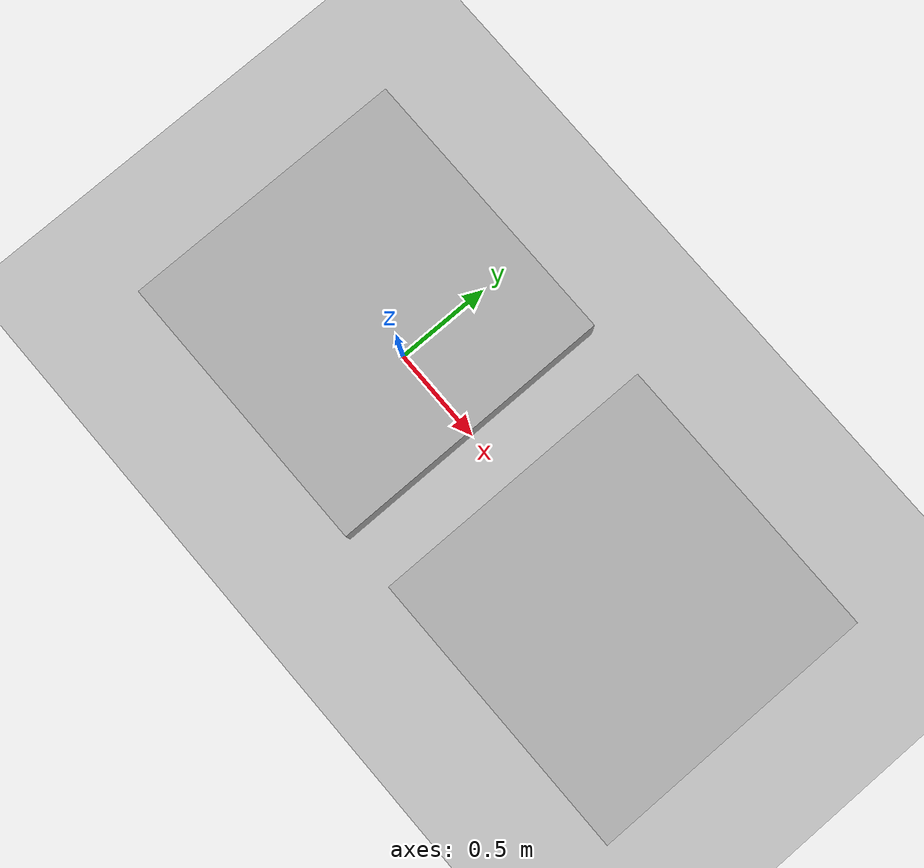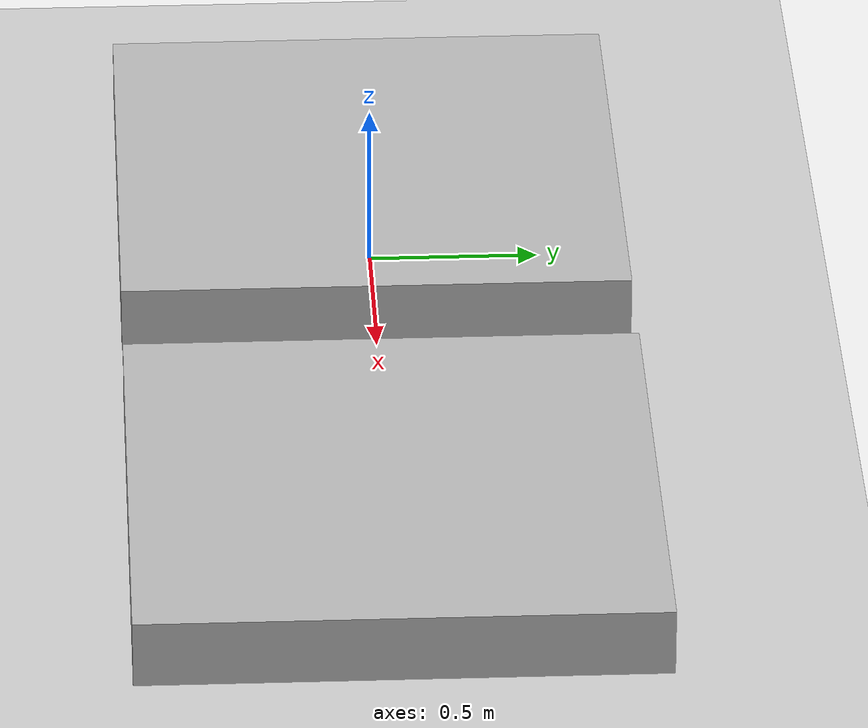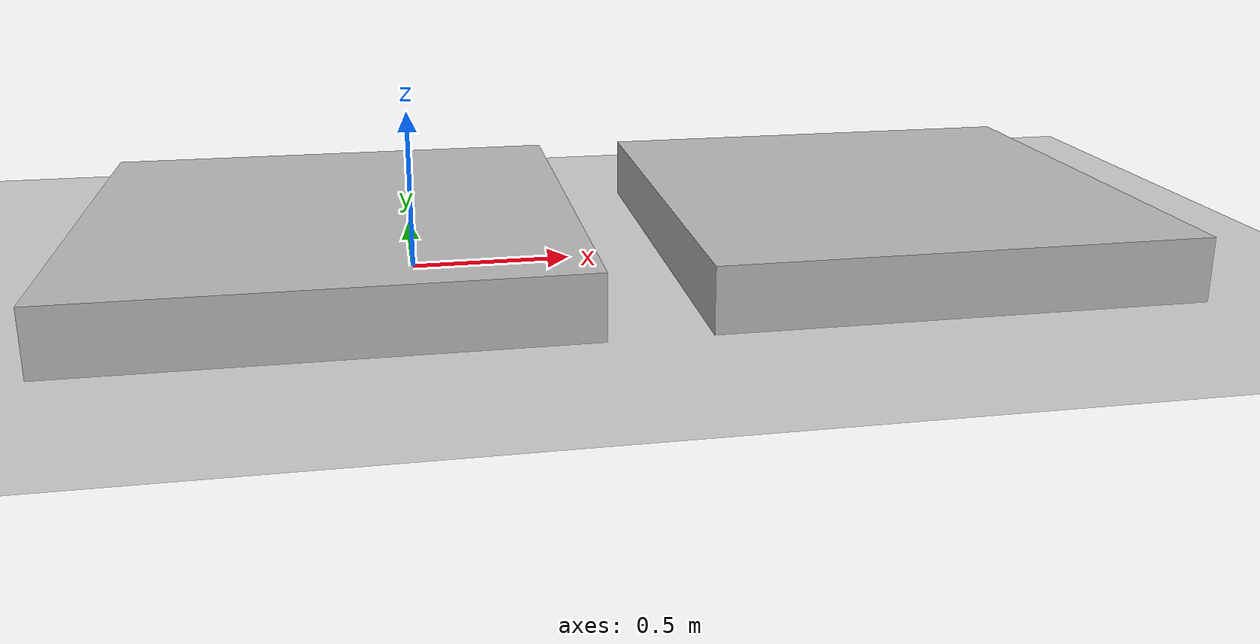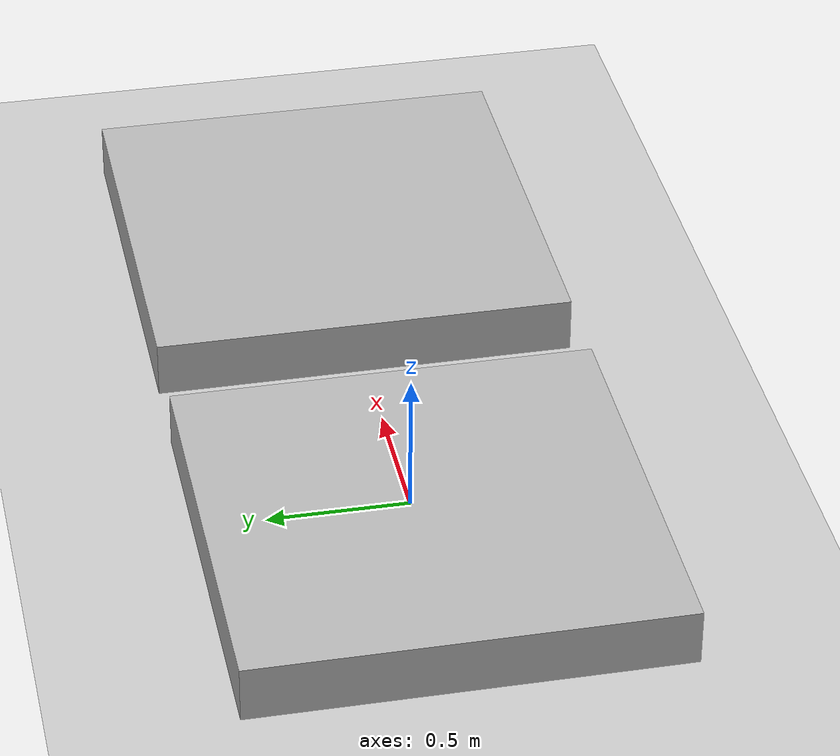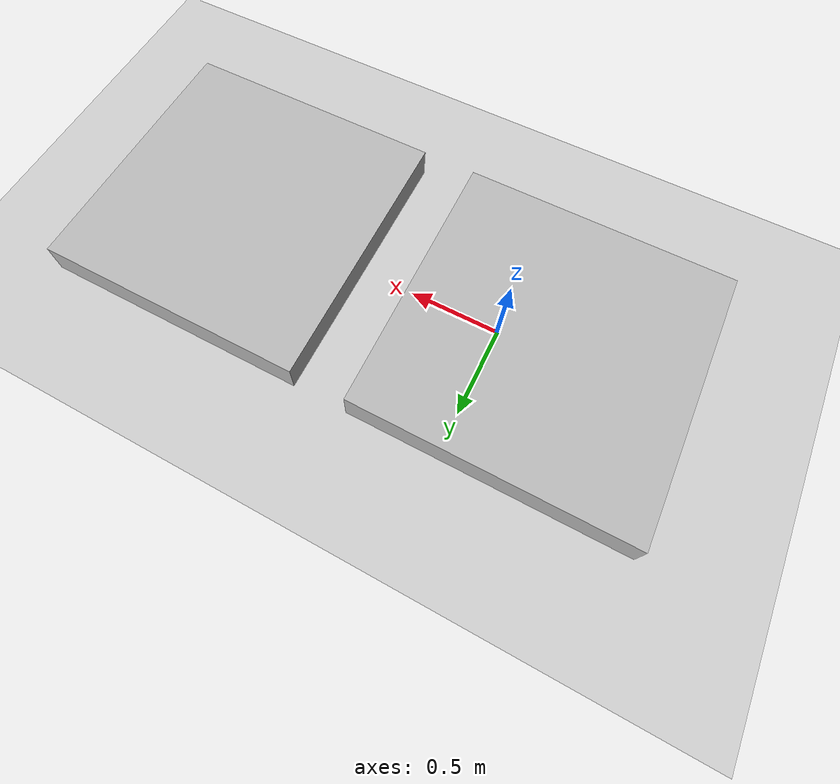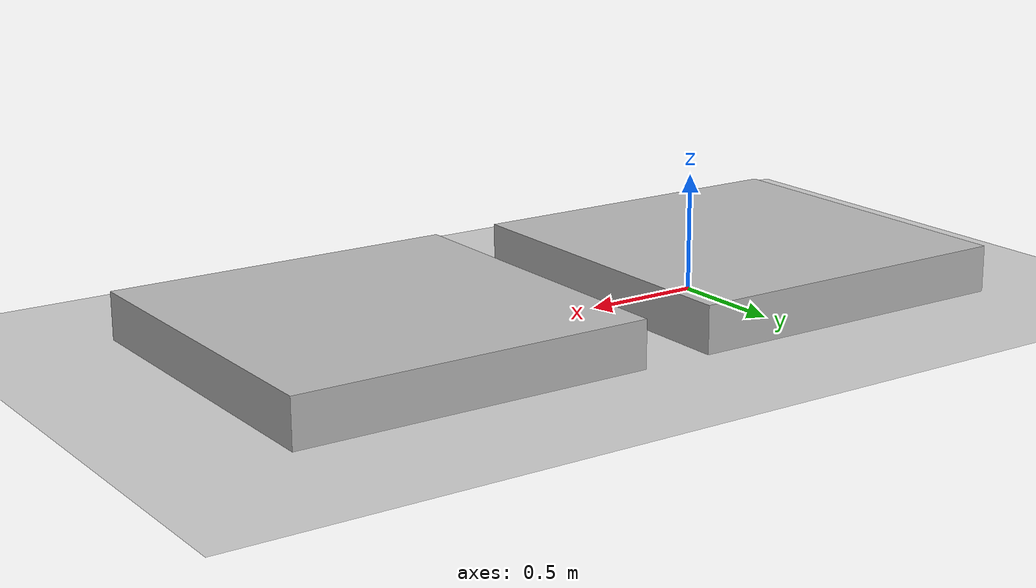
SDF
<?xml version="1.0" ?>
<sdf version="1.4">
	<world name="default">
		<scene>
			<shadows>false</shadows>
		</scene>
		<gui>
			<camera name="camera">
				<pose>0.0 -4.0 2 0.0 0.3 1.57</pose>
			</camera>
		</gui>
		<physics type="ode">
			<gravity>0 0 -9.81</gravity>
			<real_time_update_rate>500</real_time_update_rate>
			<max_step_size>0.002</max_step_size>
			<ode>
				<solver>
					<type>quick</type>
					<iters>70</iters>
					<sor>1.2</sor>
				</solver>
				<constraints>
 					<cfm>0.0</cfm>
					<erp>0.2</erp>
					<contact_max_correcting_vel>100.0</contact_max_correcting_vel>
					<contact_surface_layer>0.001</contact_surface_layer>
				</constraints>
			</ode>
		</physics>
		<include>
			<uri>model://ground_plane</uri>
		</include>
		<include>
			<uri>model://sun</uri>
		</include>

		<model name="stair1">
			<pose>-0.25 0 0.1 0 0 0</pose>

			<static>true</static>
			<link name="link">
				<visual name="visual0">
					<geometry>
						<box>
							<size>1.5 1.5 0.2</size>
						</box>
					</geometry>
				</visual>
				<collision name="collision0">
					<geometry>
						<box>
							<size>1.5 1.5 0.2</size>
						</box>
					</geometry>
					<surface>
						<friction>
							<ode>
								<mu>100000</mu>
								<mu2>100000</mu2>
							</ode>
						</friction>
					</surface>
				</collision>
			</link>
		</model>

		<model name="stair2">
			<pose>1.55 0 0.1 0 0 0</pose>

			<static>true</static>
			<link name="link">
				<visual name="visual0">
					<geometry>
						<box>
							<size>1.5 1.5 0.2</size>
						</box>
					</geometry>
				</visual>
				<collision name="collision0">
					<geometry>
						<box>
							<size>1.5 1.5 0.2</size>
						</box>
					</geometry>
					<surface>
						<friction>
							<ode>
								<mu>100000</mu>
								<mu2>100000</mu2>
							</ode>
						</friction>
					</surface>
				</collision>
			</link>
		</model>

	</world>
</sdf>
